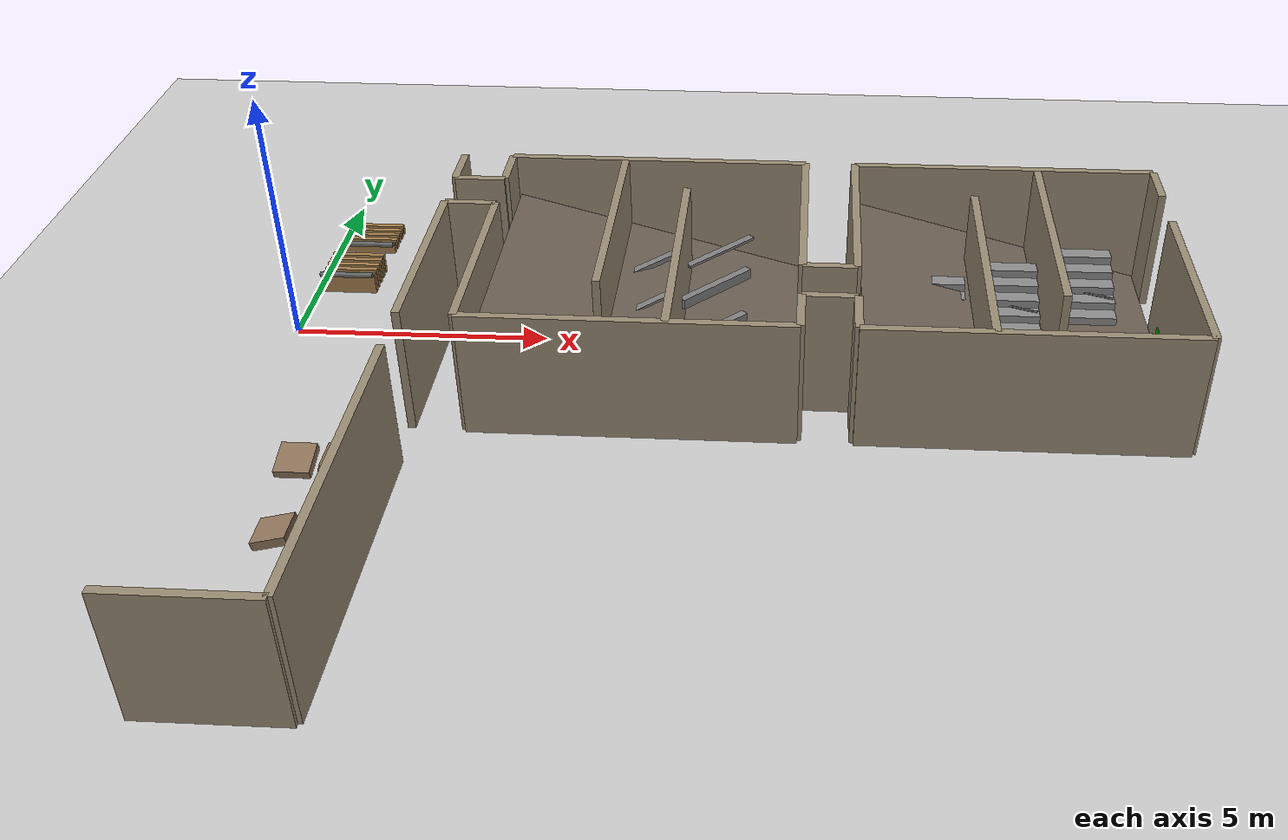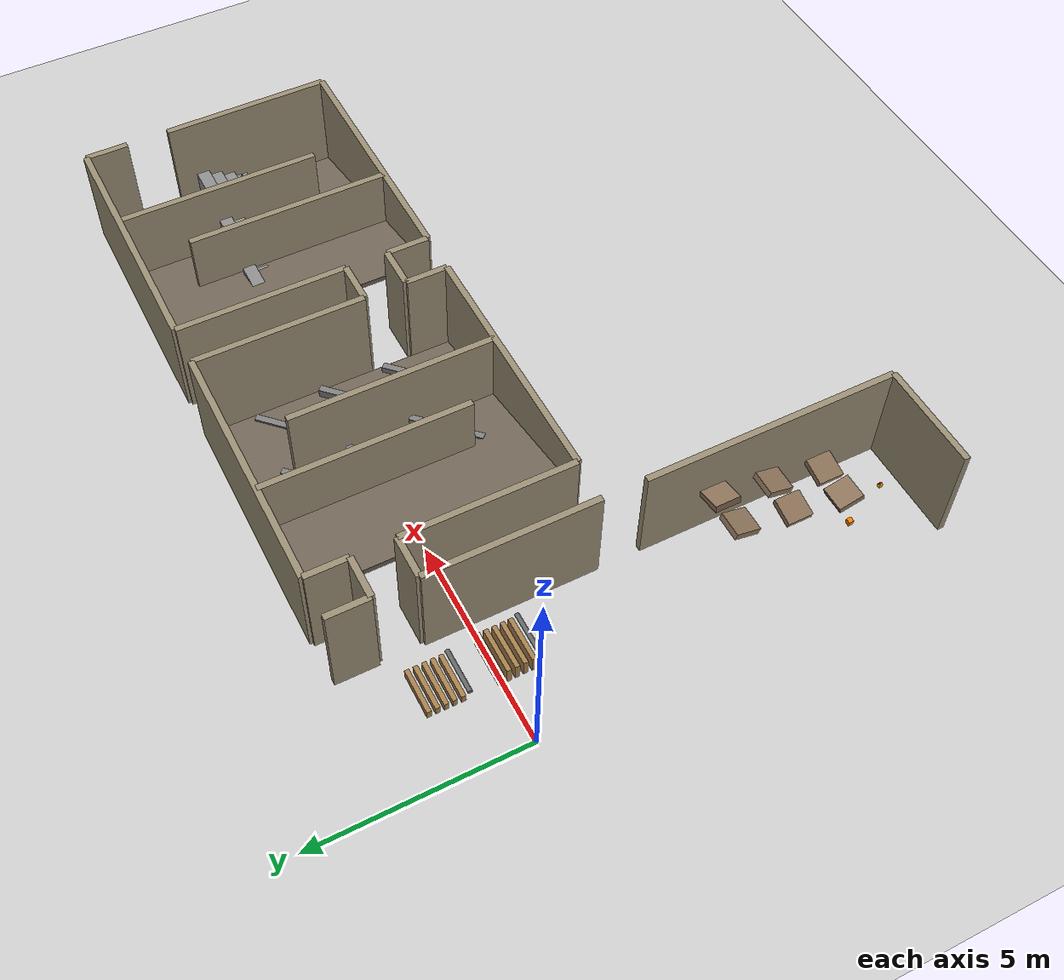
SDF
<sdf version="1.6">
 <world name="lrc_2025_atlanta">
  <model name="ground_plane">
   <static>true</static>
   <link name="link">
    <collision name="collision">
     <geometry><plane><normal>0 0 1</normal><size>50 50</size></plane></geometry>
    </collision>
    <visual name="visual">
     <geometry><plane><normal>0 0 1</normal><size>50 50</size></plane></geometry>
     <material><ambient>0.8 0.8 0.8 1</ambient><diffuse>0.8 0.8 0.8 1</diffuse></material>
    </visual>
   </link>
  </model>
  <model name="LA_S_b">
   <static>true</static>
   <pose>1.7500 -10.0000 1.2500 0.0000 0.0000 0.0000</pose>
   <link name="link">
    <collision name="col"><geometry><box><size>2.5000 0.1500 2.5000</size></box></geometry></collision>
    <visual name="vis">
     <geometry><box><size>2.5000 0.1500 2.5000</size></box></geometry>
     <material><ambient>0.6 0.55 0.45 1.0</ambient><diffuse>0.6 0.55 0.45 1.0</diffuse></material>
    </visual>
   </link>
  </model>
  <model name="LA_E">
   <static>true</static>
   <pose>3.0000 -7.0000 1.2500 0.0000 0.0000 0.0000</pose>
   <link name="link">
    <collision name="col"><geometry><box><size>0.1500 6.0000 2.5000</size></box></geometry></collision>
    <visual name="vis">
     <geometry><box><size>0.1500 6.0000 2.5000</size></box></geometry>
     <material><ambient>0.6 0.55 0.45 1.0</ambient><diffuse>0.6 0.55 0.45 1.0</diffuse></material>
    </visual>
   </link>
  </model>
  <model name="ramp_0_6">
   <static>true</static>
   <pose>1.8750 -8.3500 0.6036 -0.2618 0 0</pose>
   <link name="link">
    <collision name="col"><geometry><box><size>0.6000 0.6000 0.1600</size></box></geometry></collision>
    <visual name="vis">
     <geometry><box><size>0.6000 0.6000 0.1600</size></box></geometry>
     <material><ambient>0.55 0.45 0.35 1.0</ambient><diffuse>0.55 0.45 0.35 1.0</diffuse></material>
    </visual>
   </link>
  </model>
  <model name="ramp_0_7">
   <static>true</static>
   <pose>2.6250 -8.3500 0.6036 0 -0.2618 0</pose>
   <link name="link">
    <collision name="col"><geometry><box><size>0.6000 0.6000 0.1600</size></box></geometry></collision>
    <visual name="vis">
     <geometry><box><size>0.6000 0.6000 0.1600</size></box></geometry>
     <material><ambient>0.55 0.45 0.35 1.0</ambient><diffuse>0.55 0.45 0.35 1.0</diffuse></material>
    </visual>
   </link>
  </model>
  <model name="ramp_1_6">
   <static>true</static>
   <pose>1.8750 -7.0000 0.9530 0 -0.2618 0</pose>
   <link name="link">
    <collision name="col"><geometry><box><size>0.6000 0.6000 0.1600</size></box></geometry></collision>
    <visual name="vis">
     <geometry><box><size>0.6000 0.6000 0.1600</size></box></geometry>
     <material><ambient>0.55 0.45 0.35 1.0</ambient><diffuse>0.55 0.45 0.35 1.0</diffuse></material>
    </visual>
   </link>
  </model>
  <model name="ramp_1_7">
   <static>true</static>
   <pose>2.6250 -7.0000 0.9530 0.2618 0 0</pose>
   <link name="link">
    <collision name="col"><geometry><box><size>0.6000 0.6000 0.1600</size></box></geometry></collision>
    <visual name="vis">
     <geometry><box><size>0.6000 0.6000 0.1600</size></box></geometry>
     <material><ambient>0.55 0.45 0.35 1.0</ambient><diffuse>0.55 0.45 0.35 1.0</diffuse></material>
    </visual>
   </link>
  </model>
  <model name="ramp_2_6">
   <static>true</static>
   <pose>1.8750 -5.6500 1.3025 0.2618 0 0</pose>
   <link name="link">
    <collision name="col"><geometry><box><size>0.6000 0.6000 0.1600</size></box></geometry></collision>
    <visual name="vis">
     <geometry><box><size>0.6000 0.6000 0.1600</size></box></geometry>
     <material><ambient>0.55 0.45 0.35 1.0</ambient><diffuse>0.55 0.45 0.35 1.0</diffuse></material>
    </visual>
   </link>
  </model>
  <model name="ramp_2_7">
   <static>true</static>
   <pose>2.6250 -5.6500 1.3025 0 0.2618 0</pose>
   <link name="link">
    <collision name="col"><geometry><box><size>0.6000 0.6000 0.1600</size></box></geometry></collision>
    <visual name="vis">
     <geometry><box><size>0.6000 0.6000 0.1600</size></box></geometry>
     <material><ambient>0.55 0.45 0.35 1.0</ambient><diffuse>0.55 0.45 0.35 1.0</diffuse></material>
    </visual>
   </link>
  </model>
  <model name="haz_A">
   <static>true</static>
   <pose>1.5000 -8.3500 0.0600 0.0000 0.0000 0.0000</pose>
   <link name="link">
    <collision name="col"><geometry><box><size>0.1200 0.1200 0.1200</size></box></geometry></collision>
    <visual name="vis">
     <geometry><box><size>0.1200 0.1200 0.1200</size></box></geometry>
     <material><ambient>1.0 0.5 0.0 1.0</ambient><diffuse>1.0 0.5 0.0 1.0</diffuse></material>
    </visual>
   </link>
  </model>
  <model name="es_A">
   <static>true</static>
   <pose>2.0000 -9.5000 0.0400 0.0000 0.0000 0.0000</pose>
   <link name="link">
    <collision name="col"><geometry><box><size>0.0800 0.0800 0.0800</size></box></geometry></collision>
    <visual name="vis">
     <geometry><box><size>0.0800 0.0800 0.0800</size></box></geometry>
     <material><ambient>0.9 0.9 0.0 1.0</ambient><diffuse>0.9 0.9 0.0 1.0</diffuse></material>
    </visual>
   </link>
  </model>
  <model name="esb_A">
   <static>true</static>
   <pose>2.0000 -9.5000 0.1000 0.0000 0.0000 0.0000</pose>
   <link name="link">
    <collision name="col">
     <geometry><cylinder><radius>0.03</radius><length>0.04</length></cylinder></geometry>
    </collision>
    <visual name="vis">
     <geometry><cylinder><radius>0.03</radius><length>0.04</length></cylinder></geometry>
     <material><ambient>1.0 0.0 0.0 1.0</ambient><diffuse>1.0 0.0 0.0 1.0</diffuse></material>
    </visual>
   </link>
  </model>
  <model name="LC_E_a">
   <static>true</static>
   <pose>3.0000 -1.0000 1.2500 0.0000 0.0000 0.0000</pose>
   <link name="link">
    <collision name="col"><geometry><box><size>0.1500 4.0000 2.5000</size></box></geometry></collision>
    <visual name="vis">
     <geometry><box><size>0.1500 4.0000 2.5000</size></box></geometry>
     <material><ambient>0.6 0.55 0.45 1.0</ambient><diffuse>0.6 0.55 0.45 1.0</diffuse></material>
    </visual>
   </link>
  </model>
  <model name="LC_E_b">
   <static>true</static>
   <pose>3.0000 2.5000 1.2500 0.0000 0.0000 0.0000</pose>
   <link name="link">
    <collision name="col"><geometry><box><size>0.1500 1.0000 2.5000</size></box></geometry></collision>
    <visual name="vis">
     <geometry><box><size>0.1500 1.0000 2.5000</size></box></geometry>
     <material><ambient>0.6 0.55 0.45 1.0</ambient><diffuse>0.6 0.55 0.45 1.0</diffuse></material>
    </visual>
   </link>
  </model>
  <model name="plt_2_1_0">
   <static>true</static>
   <pose>1.3500 -0.3600 1.4225 0.0000 0.0000 0.0000</pose>
   <link name="link">
    <collision name="col"><geometry><box><size>1.0000 0.1000 0.4000</size></box></geometry></collision>
    <visual name="vis">
     <geometry><box><size>1.0000 0.1000 0.4000</size></box></geometry>
     <material><ambient>0.65 0.5 0.3 1.0</ambient><diffuse>0.65 0.5 0.3 1.0</diffuse></material>
    </visual>
   </link>
  </model>
  <model name="plt_2_1_1">
   <static>true</static>
   <pose>1.3500 -0.1800 1.4225 0.0000 0.0000 0.0000</pose>
   <link name="link">
    <collision name="col"><geometry><box><size>1.0000 0.1000 0.4000</size></box></geometry></collision>
    <visual name="vis">
     <geometry><box><size>1.0000 0.1000 0.4000</size></box></geometry>
     <material><ambient>0.65 0.5 0.3 1.0</ambient><diffuse>0.65 0.5 0.3 1.0</diffuse></material>
    </visual>
   </link>
  </model>
  <model name="plt_2_1_2">
   <static>true</static>
   <pose>1.3500 0.0000 1.4225 0.0000 0.0000 0.0000</pose>
   <link name="link">
    <collision name="col"><geometry><box><size>1.0000 0.1000 0.4000</size></box></geometry></collision>
    <visual name="vis">
     <geometry><box><size>1.0000 0.1000 0.4000</size></box></geometry>
     <material><ambient>0.65 0.5 0.3 1.0</ambient><diffuse>0.65 0.5 0.3 1.0</diffuse></material>
    </visual>
   </link>
  </model>
  <model name="plt_2_1_3">
   <static>true</static>
   <pose>1.3500 0.1800 1.4225 0.0000 0.0000 0.0000</pose>
   <link name="link">
    <collision name="col"><geometry><box><size>1.0000 0.1000 0.4000</size></box></geometry></collision>
    <visual name="vis">
     <geometry><box><size>1.0000 0.1000 0.4000</size></box></geometry>
     <material><ambient>0.65 0.5 0.3 1.0</ambient><diffuse>0.65 0.5 0.3 1.0</diffuse></material>
    </visual>
   </link>
  </model>
  <model name="plt_2_1_4">
   <static>true</static>
   <pose>1.3500 0.3600 1.4225 0.0000 0.0000 0.0000</pose>
   <link name="link">
    <collision name="col"><geometry><box><size>1.0000 0.1000 0.4000</size></box></geometry></collision>
    <visual name="vis">
     <geometry><box><size>1.0000 0.1000 0.4000</size></box></geometry>
     <material><ambient>0.65 0.5 0.3 1.0</ambient><diffuse>0.65 0.5 0.3 1.0</diffuse></material>
    </visual>
   </link>
  </model>
  <model name="pipe_2_1">
   <static>true</static>
   <pose>1.3500 -0.5000 1.6725 0 1.5708 0</pose>
   <link name="link">
    <collision name="col">
     <geometry><cylinder><radius>0.05</radius><length>1.0</length></cylinder></geometry>
    </collision>
    <visual name="vis">
     <geometry><cylinder><radius>0.05</radius><length>1.0</length></cylinder></geometry>
     <material><ambient>0.4 0.4 0.4 1.0</ambient><diffuse>0.4 0.4 0.4 1.0</diffuse></material>
    </visual>
   </link>
  </model>
  <model name="plt_2_2_0">
   <static>true</static>
   <pose>1.3500 1.1400 1.3225 0.0000 0.0000 0.0000</pose>
   <link name="link">
    <collision name="col"><geometry><box><size>1.0000 0.1000 0.2000</size></box></geometry></collision>
    <visual name="vis">
     <geometry><box><size>1.0000 0.1000 0.2000</size></box></geometry>
     <material><ambient>0.65 0.5 0.3 1.0</ambient><diffuse>0.65 0.5 0.3 1.0</diffuse></material>
    </visual>
   </link>
  </model>
  <model name="plt_2_2_1">
   <static>true</static>
   <pose>1.3500 1.3200 1.3225 0.0000 0.0000 0.0000</pose>
   <link name="link">
    <collision name="col"><geometry><box><size>1.0000 0.1000 0.2000</size></box></geometry></collision>
    <visual name="vis">
     <geometry><box><size>1.0000 0.1000 0.2000</size></box></geometry>
     <material><ambient>0.65 0.5 0.3 1.0</ambient><diffuse>0.65 0.5 0.3 1.0</diffuse></material>
    </visual>
   </link>
  </model>
  <model name="plt_2_2_2">
   <static>true</static>
   <pose>1.3500 1.5000 1.3225 0.0000 0.0000 0.0000</pose>
   <link name="link">
    <collision name="col"><geometry><box><size>1.0000 0.1000 0.2000</size></box></geometry></collision>
    <visual name="vis">
     <geometry><box><size>1.0000 0.1000 0.2000</size></box></geometry>
     <material><ambient>0.65 0.5 0.3 1.0</ambient><diffuse>0.65 0.5 0.3 1.0</diffuse></material>
    </visual>
   </link>
  </model>
  <model name="plt_2_2_3">
   <static>true</static>
   <pose>1.3500 1.6800 1.3225 0.0000 0.0000 0.0000</pose>
   <link name="link">
    <collision name="col"><geometry><box><size>1.0000 0.1000 0.2000</size></box></geometry></collision>
    <visual name="vis">
     <geometry><box><size>1.0000 0.1000 0.2000</size></box></geometry>
     <material><ambient>0.65 0.5 0.3 1.0</ambient><diffuse>0.65 0.5 0.3 1.0</diffuse></material>
    </visual>
   </link>
  </model>
  <model name="plt_2_2_4">
   <static>true</static>
   <pose>1.3500 1.8600 1.3225 0.0000 0.0000 0.0000</pose>
   <link name="link">
    <collision name="col"><geometry><box><size>1.0000 0.1000 0.2000</size></box></geometry></collision>
    <visual name="vis">
     <geometry><box><size>1.0000 0.1000 0.2000</size></box></geometry>
     <material><ambient>0.65 0.5 0.3 1.0</ambient><diffuse>0.65 0.5 0.3 1.0</diffuse></material>
    </visual>
   </link>
  </model>
  <model name="pipe_2_2">
   <static>true</static>
   <pose>1.3500 1.0000 1.4725 0 1.5708 0</pose>
   <link name="link">
    <collision name="col">
     <geometry><cylinder><radius>0.05</radius><length>1.0</length></cylinder></geometry>
    </collision>
    <visual name="vis">
     <geometry><cylinder><radius>0.05</radius><length>1.0</length></cylinder></geometry>
     <material><ambient>0.4 0.4 0.4 1.0</ambient><diffuse>0.4 0.4 0.4 1.0</diffuse></material>
    </visual>
   </link>
  </model>
  <model name="LD_S">
   <static>true</static>
   <pose>7.0000 -3.0000 1.2500 0.0000 0.0000 0.0000</pose>
   <link name="link">
    <collision name="col"><geometry><box><size>6.0000 0.1500 2.5000</size></box></geometry></collision>
    <visual name="vis">
     <geometry><box><size>6.0000 0.1500 2.5000</size></box></geometry>
     <material><ambient>0.6 0.55 0.45 1.0</ambient><diffuse>0.6 0.55 0.45 1.0</diffuse></material>
    </visual>
   </link>
  </model>
  <model name="LD_N">
   <static>true</static>
   <pose>7.0000 3.0000 1.2500 0.0000 0.0000 0.0000</pose>
   <link name="link">
    <collision name="col"><geometry><box><size>6.0000 0.1500 2.5000</size></box></geometry></collision>
    <visual name="vis">
     <geometry><box><size>6.0000 0.1500 2.5000</size></box></geometry>
     <material><ambient>0.6 0.55 0.45 1.0</ambient><diffuse>0.6 0.55 0.45 1.0</diffuse></material>
    </visual>
   </link>
  </model>
  <model name="LD_W_a">
   <static>true</static>
   <pose>4.0000 -1.0000 1.2500 0.0000 0.0000 0.0000</pose>
   <link name="link">
    <collision name="col"><geometry><box><size>0.1500 4.0000 2.5000</size></box></geometry></collision>
    <visual name="vis">
     <geometry><box><size>0.1500 4.0000 2.5000</size></box></geometry>
     <material><ambient>0.6 0.55 0.45 1.0</ambient><diffuse>0.6 0.55 0.45 1.0</diffuse></material>
    </visual>
   </link>
  </model>
  <model name="LD_W_b">
   <static>true</static>
   <pose>4.0000 2.5000 1.2500 0.0000 0.0000 0.0000</pose>
   <link name="link">
    <collision name="col"><geometry><box><size>0.1500 1.0000 2.5000</size></box></geometry></collision>
    <visual name="vis">
     <geometry><box><size>0.1500 1.0000 2.5000</size></box></geometry>
     <material><ambient>0.6 0.55 0.45 1.0</ambient><diffuse>0.6 0.55 0.45 1.0</diffuse></material>
    </visual>
   </link>
  </model>
  <model name="LD_E_a">
   <static>true</static>
   <pose>10.0000 -2.5000 1.2500 0.0000 0.0000 0.0000</pose>
   <link name="link">
    <collision name="col"><geometry><box><size>0.1500 1.0000 2.5000</size></box></geometry></collision>
    <visual name="vis">
     <geometry><box><size>0.1500 1.0000 2.5000</size></box></geometry>
     <material><ambient>0.6 0.55 0.45 1.0</ambient><diffuse>0.6 0.55 0.45 1.0</diffuse></material>
    </visual>
   </link>
  </model>
  <model name="LD_E_b">
   <static>true</static>
   <pose>10.0000 1.0000 1.2500 0.0000 0.0000 0.0000</pose>
   <link name="link">
    <collision name="col"><geometry><box><size>0.1500 4.0000 2.5000</size></box></geometry></collision>
    <visual name="vis">
     <geometry><box><size>0.1500 4.0000 2.5000</size></box></geometry>
     <material><ambient>0.6 0.55 0.45 1.0</ambient><diffuse>0.6 0.55 0.45 1.0</diffuse></material>
    </visual>
   </link>
  </model>
  <model name="LD_d0">
   <static>true</static>
   <pose>6.3250 0.6000 1.2500 0.0000 0.0000 0.0000</pose>
   <link name="link">
    <collision name="col"><geometry><box><size>0.1500 4.8000 2.5000</size></box></geometry></collision>
    <visual name="vis">
     <geometry><box><size>0.1500 4.8000 2.5000</size></box></geometry>
     <material><ambient>0.6 0.55 0.45 1.0</ambient><diffuse>0.6 0.55 0.45 1.0</diffuse></material>
    </visual>
   </link>
  </model>
  <model name="LD_d1">
   <static>true</static>
   <pose>7.6750 -0.6000 1.2500 0.0000 0.0000 0.0000</pose>
   <link name="link">
    <collision name="col"><geometry><box><size>0.1500 4.8000 2.5000</size></box></geometry></collision>
    <visual name="vis">
     <geometry><box><size>0.1500 4.8000 2.5000</size></box></geometry>
     <material><ambient>0.6 0.55 0.45 1.0</ambient><diffuse>0.6 0.55 0.45 1.0</diffuse></material>
    </visual>
   </link>
  </model>
  <model name="LD_floor">
   <static>true</static>
   <pose>7 0 0.8248 0 0.2618 0</pose>
   <link name="link">
    <collision name="col"><geometry><box><size>6.0000 6.0000 0.1000</size></box></geometry></collision>
    <visual name="vis">
     <geometry><box><size>6.0000 6.0000 0.1000</size></box></geometry>
     <material><ambient>0.45 0.4 0.35 1.0</ambient><diffuse>0.45 0.4 0.35 1.0</diffuse></material>
    </visual>
   </link>
  </model>
  <model name="kr_0_0">
   <static>true</static>
   <pose>5.6500 -1.5000 0.5486 0 0 0.7854</pose>
   <link name="link">
    <collision name="col"><geometry><box><size>1.7000 0.1500 0.0500</size></box></geometry></collision>
    <visual name="vis">
     <geometry><box><size>1.7000 0.1500 0.0500</size></box></geometry>
     <material><ambient>0.5 0.5 0.5 1.0</ambient><diffuse>0.5 0.5 0.5 1.0</diffuse></material>
    </visual>
   </link>
  </model>
  <model name="kr_0_1">
   <static>true</static>
   <pose>5.6500 0.0000 0.5736 0 0 0.7854</pose>
   <link name="link">
    <collision name="col"><geometry><box><size>1.7000 0.1500 0.1000</size></box></geometry></collision>
    <visual name="vis">
     <geometry><box><size>1.7000 0.1500 0.1000</size></box></geometry>
     <material><ambient>0.5 0.5 0.5 1.0</ambient><diffuse>0.5 0.5 0.5 1.0</diffuse></material>
    </visual>
   </link>
  </model>
  <model name="kr_0_2">
   <static>true</static>
   <pose>5.6500 1.5000 0.5986 0 0 0.7854</pose>
   <link name="link">
    <collision name="col"><geometry><box><size>1.7000 0.1500 0.1500</size></box></geometry></collision>
    <visual name="vis">
     <geometry><box><size>1.7000 0.1500 0.1500</size></box></geometry>
     <material><ambient>0.5 0.5 0.5 1.0</ambient><diffuse>0.5 0.5 0.5 1.0</diffuse></material>
    </visual>
   </link>
  </model>
  <model name="kr_1_0">
   <static>true</static>
   <pose>7.0000 -1.5000 0.9730 0 0 0.7854</pose>
   <link name="link">
    <collision name="col"><geometry><box><size>1.7000 0.1500 0.2000</size></box></geometry></collision>
    <visual name="vis">
     <geometry><box><size>1.7000 0.1500 0.2000</size></box></geometry>
     <material><ambient>0.5 0.5 0.5 1.0</ambient><diffuse>0.5 0.5 0.5 1.0</diffuse></material>
    </visual>
   </link>
  </model>
  <model name="kr_1_1">
   <static>true</static>
   <pose>7.0000 0.0000 0.8980 0 0 0.7854</pose>
   <link name="link">
    <collision name="col"><geometry><box><size>1.7000 0.1500 0.0500</size></box></geometry></collision>
    <visual name="vis">
     <geometry><box><size>1.7000 0.1500 0.0500</size></box></geometry>
     <material><ambient>0.5 0.5 0.5 1.0</ambient><diffuse>0.5 0.5 0.5 1.0</diffuse></material>
    </visual>
   </link>
  </model>
  <model name="kr_1_2">
   <static>true</static>
   <pose>7.0000 1.5000 0.9230 0 0 0.7854</pose>
   <link name="link">
    <collision name="col"><geometry><box><size>1.7000 0.1500 0.1000</size></box></geometry></collision>
    <visual name="vis">
     <geometry><box><size>1.7000 0.1500 0.1000</size></box></geometry>
     <material><ambient>0.5 0.5 0.5 1.0</ambient><diffuse>0.5 0.5 0.5 1.0</diffuse></material>
    </visual>
   </link>
  </model>
  <model name="kr_2_0">
   <static>true</static>
   <pose>8.3500 -1.5000 1.2975 0 0 0.7854</pose>
   <link name="link">
    <collision name="col"><geometry><box><size>1.7000 0.1500 0.1500</size></box></geometry></collision>
    <visual name="vis">
     <geometry><box><size>1.7000 0.1500 0.1500</size></box></geometry>
     <material><ambient>0.5 0.5 0.5 1.0</ambient><diffuse>0.5 0.5 0.5 1.0</diffuse></material>
    </visual>
   </link>
  </model>
  <model name="kr_2_1">
   <static>true</static>
   <pose>8.3500 0.0000 1.3225 0 0 0.7854</pose>
   <link name="link">
    <collision name="col"><geometry><box><size>1.7000 0.1500 0.2000</size></box></geometry></collision>
    <visual name="vis">
     <geometry><box><size>1.7000 0.1500 0.2000</size></box></geometry>
     <material><ambient>0.5 0.5 0.5 1.0</ambient><diffuse>0.5 0.5 0.5 1.0</diffuse></material>
    </visual>
   </link>
  </model>
  <model name="kr_2_2">
   <static>true</static>
   <pose>8.3500 1.5000 1.2475 0 0 0.7854</pose>
   <link name="link">
    <collision name="col"><geometry><box><size>1.7000 0.1500 0.0500</size></box></geometry></collision>
    <visual name="vis">
     <geometry><box><size>1.7000 0.1500 0.0500</size></box></geometry>
     <material><ambient>0.5 0.5 0.5 1.0</ambient><diffuse>0.5 0.5 0.5 1.0</diffuse></material>
    </visual>
   </link>
  </model>
  <model name="qr_D">
   <static>true</static>
   <pose>7 -2.8500 0.6000 0.0000 0.0000 0.0000</pose>
   <link name="link">
    <collision name="col"><geometry><box><size>0.1500 0.0200 0.1500</size></box></geometry></collision>
    <visual name="vis">
     <geometry><box><size>0.1500 0.0200 0.1500</size></box></geometry>
     <material><ambient>0.0 0.8 0.0 1.0</ambient><diffuse>0.0 0.8 0.0 1.0</diffuse></material>
    </visual>
   </link>
  </model>
  <model name="haz_D">
   <static>true</static>
   <pose>8.3500 -1.0000 0.0600 0.0000 0.0000 0.0000</pose>
   <link name="link">
    <collision name="col"><geometry><box><size>0.1200 0.1200 0.1200</size></box></geometry></collision>
    <visual name="vis">
     <geometry><box><size>0.1200 0.1200 0.1200</size></box></geometry>
     <material><ambient>1.0 0.5 0.0 1.0</ambient><diffuse>1.0 0.5 0.0 1.0</diffuse></material>
    </visual>
   </link>
  </model>
  <model name="es_D">
   <static>true</static>
   <pose>7.0000 1.0000 0.0400 0.0000 0.0000 0.0000</pose>
   <link name="link">
    <collision name="col"><geometry><box><size>0.0800 0.0800 0.0800</size></box></geometry></collision>
    <visual name="vis">
     <geometry><box><size>0.0800 0.0800 0.0800</size></box></geometry>
     <material><ambient>0.9 0.9 0.0 1.0</ambient><diffuse>0.9 0.9 0.0 1.0</diffuse></material>
    </visual>
   </link>
  </model>
  <model name="esb_D">
   <static>true</static>
   <pose>7.0000 1.0000 0.1000 0.0000 0.0000 0.0000</pose>
   <link name="link">
    <collision name="col">
     <geometry><cylinder><radius>0.03</radius><length>0.04</length></cylinder></geometry>
    </collision>
    <visual name="vis">
     <geometry><cylinder><radius>0.03</radius><length>0.04</length></cylinder></geometry>
     <material><ambient>1.0 0.0 0.0 1.0</ambient><diffuse>1.0 0.0 0.0 1.0</diffuse></material>
    </visual>
   </link>
  </model>
  <model name="LF_S">
   <static>true</static>
   <pose>14.0000 -3.0000 1.2500 0.0000 0.0000 0.0000</pose>
   <link name="link">
    <collision name="col"><geometry><box><size>6.0000 0.1500 2.5000</size></box></geometry></collision>
    <visual name="vis">
     <geometry><box><size>6.0000 0.1500 2.5000</size></box></geometry>
     <material><ambient>0.6 0.55 0.45 1.0</ambient><diffuse>0.6 0.55 0.45 1.0</diffuse></material>
    </visual>
   </link>
  </model>
  <model name="LF_N">
   <static>true</static>
   <pose>14.0000 3.0000 1.2500 0.0000 0.0000 0.0000</pose>
   <link name="link">
    <collision name="col"><geometry><box><size>6.0000 0.1500 2.5000</size></box></geometry></collision>
    <visual name="vis">
     <geometry><box><size>6.0000 0.1500 2.5000</size></box></geometry>
     <material><ambient>0.6 0.55 0.45 1.0</ambient><diffuse>0.6 0.55 0.45 1.0</diffuse></material>
    </visual>
   </link>
  </model>
  <model name="LF_W_a">
   <static>true</static>
   <pose>11.0000 -2.5000 1.2500 0.0000 0.0000 0.0000</pose>
   <link name="link">
    <collision name="col"><geometry><box><size>0.1500 1.0000 2.5000</size></box></geometry></collision>
    <visual name="vis">
     <geometry><box><size>0.1500 1.0000 2.5000</size></box></geometry>
     <material><ambient>0.6 0.55 0.45 1.0</ambient><diffuse>0.6 0.55 0.45 1.0</diffuse></material>
    </visual>
   </link>
  </model>
  <model name="LF_W_b">
   <static>true</static>
   <pose>11.0000 1.0000 1.2500 0.0000 0.0000 0.0000</pose>
   <link name="link">
    <collision name="col"><geometry><box><size>0.1500 4.0000 2.5000</size></box></geometry></collision>
    <visual name="vis">
     <geometry><box><size>0.1500 4.0000 2.5000</size></box></geometry>
     <material><ambient>0.6 0.55 0.45 1.0</ambient><diffuse>0.6 0.55 0.45 1.0</diffuse></material>
    </visual>
   </link>
  </model>
  <model name="LF_E_a">
   <static>true</static>
   <pose>17.0000 -1.0000 1.2500 0.0000 0.0000 0.0000</pose>
   <link name="link">
    <collision name="col"><geometry><box><size>0.1500 4.0000 2.5000</size></box></geometry></collision>
    <visual name="vis">
     <geometry><box><size>0.1500 4.0000 2.5000</size></box></geometry>
     <material><ambient>0.6 0.55 0.45 1.0</ambient><diffuse>0.6 0.55 0.45 1.0</diffuse></material>
    </visual>
   </link>
  </model>
  <model name="LF_E_b">
   <static>true</static>
   <pose>17.0000 2.5000 1.2500 0.0000 0.0000 0.0000</pose>
   <link name="link">
    <collision name="col"><geometry><box><size>0.1500 1.0000 2.5000</size></box></geometry></collision>
    <visual name="vis">
     <geometry><box><size>0.1500 1.0000 2.5000</size></box></geometry>
     <material><ambient>0.6 0.55 0.45 1.0</ambient><diffuse>0.6 0.55 0.45 1.0</diffuse></material>
    </visual>
   </link>
  </model>
  <model name="LF_d0">
   <static>true</static>
   <pose>13.3250 -0.6000 1.2500 0.0000 0.0000 0.0000</pose>
   <link name="link">
    <collision name="col"><geometry><box><size>0.1500 4.8000 2.5000</size></box></geometry></collision>
    <visual name="vis">
     <geometry><box><size>0.1500 4.8000 2.5000</size></box></geometry>
     <material><ambient>0.6 0.55 0.45 1.0</ambient><diffuse>0.6 0.55 0.45 1.0</diffuse></material>
    </visual>
   </link>
  </model>
  <model name="LF_d1">
   <static>true</static>
   <pose>14.6750 0.6000 1.2500 0.0000 0.0000 0.0000</pose>
   <link name="link">
    <collision name="col"><geometry><box><size>0.1500 4.8000 2.5000</size></box></geometry></collision>
    <visual name="vis">
     <geometry><box><size>0.1500 4.8000 2.5000</size></box></geometry>
     <material><ambient>0.6 0.55 0.45 1.0</ambient><diffuse>0.6 0.55 0.45 1.0</diffuse></material>
    </visual>
   </link>
  </model>
  <model name="LF_floor">
   <static>true</static>
   <pose>14 0 0.8248 0 0.2618 0</pose>
   <link name="link">
    <collision name="col"><geometry><box><size>6.0000 6.0000 0.1000</size></box></geometry></collision>
    <visual name="vis">
     <geometry><box><size>6.0000 6.0000 0.1000</size></box></geometry>
     <material><ambient>0.45 0.4 0.35 1.0</ambient><diffuse>0.45 0.4 0.35 1.0</diffuse></material>
    </visual>
   </link>
  </model>
  <model name="step_0_0">
   <static>true</static>
   <pose>12.6500 -0.6000 0.5986 0.0000 0.0000 0.0000</pose>
   <link name="link">
    <collision name="col"><geometry><box><size>1.0000 0.3000 0.1500</size></box></geometry></collision>
    <visual name="vis">
     <geometry><box><size>1.0000 0.3000 0.1500</size></box></geometry>
     <material><ambient>0.55 0.55 0.55 1.0</ambient><diffuse>0.55 0.55 0.55 1.0</diffuse></material>
    </visual>
   </link>
  </model>
  <model name="step_0_1">
   <static>true</static>
   <pose>12.6500 -0.3000 0.6736 0.0000 0.0000 0.0000</pose>
   <link name="link">
    <collision name="col"><geometry><box><size>1.0000 0.3000 0.3000</size></box></geometry></collision>
    <visual name="vis">
     <geometry><box><size>1.0000 0.3000 0.3000</size></box></geometry>
     <material><ambient>0.55 0.55 0.55 1.0</ambient><diffuse>0.55 0.55 0.55 1.0</diffuse></material>
    </visual>
   </link>
  </model>
  <model name="step_0_2">
   <static>true</static>
   <pose>12.6500 -0.0000 0.7486 0.0000 0.0000 0.0000</pose>
   <link name="link">
    <collision name="col"><geometry><box><size>1.0000 0.3000 0.4500</size></box></geometry></collision>
    <visual name="vis">
     <geometry><box><size>1.0000 0.3000 0.4500</size></box></geometry>
     <material><ambient>0.55 0.55 0.55 1.0</ambient><diffuse>0.55 0.55 0.55 1.0</diffuse></material>
    </visual>
   </link>
  </model>
  <model name="step_0_3">
   <static>true</static>
   <pose>12.6500 0.3000 0.8236 0.0000 0.0000 0.0000</pose>
   <link name="link">
    <collision name="col"><geometry><box><size>1.0000 0.3000 0.6000</size></box></geometry></collision>
    <visual name="vis">
     <geometry><box><size>1.0000 0.3000 0.6000</size></box></geometry>
     <material><ambient>0.55 0.55 0.55 1.0</ambient><diffuse>0.55 0.55 0.55 1.0</diffuse></material>
    </visual>
   </link>
  </model>
  <model name="step_0_4">
   <static>true</static>
   <pose>12.6500 0.6000 0.8986 0.0000 0.0000 0.0000</pose>
   <link name="link">
    <collision name="col"><geometry><box><size>1.0000 0.3000 0.7500</size></box></geometry></collision>
    <visual name="vis">
     <geometry><box><size>1.0000 0.3000 0.7500</size></box></geometry>
     <material><ambient>0.55 0.55 0.55 1.0</ambient><diffuse>0.55 0.55 0.55 1.0</diffuse></material>
    </visual>
   </link>
  </model>
  <model name="debris_0">
   <static>true</static>
   <pose>12.6500 -0.1500 0.8436 0.3500 1.5708 0</pose>
   <link name="link">
    <collision name="col">
     <geometry><cylinder><radius>0.02</radius><length>1.0</length></cylinder></geometry>
    </collision>
    <visual name="vis">
     <geometry><cylinder><radius>0.02</radius><length>1.0</length></cylinder></geometry>
     <material><ambient>0.4 0.4 0.4 1.0</ambient><diffuse>0.4 0.4 0.4 1.0</diffuse></material>
    </visual>
   </link>
  </model>
  <model name="step_1_0">
   <static>true</static>
   <pose>14.0000 -0.6000 0.9480 0.0000 0.0000 0.0000</pose>
   <link name="link">
    <collision name="col"><geometry><box><size>1.0000 0.3000 0.1500</size></box></geometry></collision>
    <visual name="vis">
     <geometry><box><size>1.0000 0.3000 0.1500</size></box></geometry>
     <material><ambient>0.55 0.55 0.55 1.0</ambient><diffuse>0.55 0.55 0.55 1.0</diffuse></material>
    </visual>
   </link>
  </model>
  <model name="step_1_1">
   <static>true</static>
   <pose>14.0000 -0.3000 1.0230 0.0000 0.0000 0.0000</pose>
   <link name="link">
    <collision name="col"><geometry><box><size>1.0000 0.3000 0.3000</size></box></geometry></collision>
    <visual name="vis">
     <geometry><box><size>1.0000 0.3000 0.3000</size></box></geometry>
     <material><ambient>0.55 0.55 0.55 1.0</ambient><diffuse>0.55 0.55 0.55 1.0</diffuse></material>
    </visual>
   </link>
  </model>
  <model name="step_1_2">
   <static>true</static>
   <pose>14.0000 -0.0000 1.0980 0.0000 0.0000 0.0000</pose>
   <link name="link">
    <collision name="col"><geometry><box><size>1.0000 0.3000 0.4500</size></box></geometry></collision>
    <visual name="vis">
     <geometry><box><size>1.0000 0.3000 0.4500</size></box></geometry>
     <material><ambient>0.55 0.55 0.55 1.0</ambient><diffuse>0.55 0.55 0.55 1.0</diffuse></material>
    </visual>
   </link>
  </model>
  <model name="step_1_3">
   <static>true</static>
   <pose>14.0000 0.3000 1.1730 0.0000 0.0000 0.0000</pose>
   <link name="link">
    <collision name="col"><geometry><box><size>1.0000 0.3000 0.6000</size></box></geometry></collision>
    <visual name="vis">
     <geometry><box><size>1.0000 0.3000 0.6000</size></box></geometry>
     <material><ambient>0.55 0.55 0.55 1.0</ambient><diffuse>0.55 0.55 0.55 1.0</diffuse></material>
    </visual>
   </link>
  </model>
  <model name="step_1_4">
   <static>true</static>
   <pose>14.0000 0.6000 1.2480 0.0000 0.0000 0.0000</pose>
   <link name="link">
    <collision name="col"><geometry><box><size>1.0000 0.3000 0.7500</size></box></geometry></collision>
    <visual name="vis">
     <geometry><box><size>1.0000 0.3000 0.7500</size></box></geometry>
     <material><ambient>0.55 0.55 0.55 1.0</ambient><diffuse>0.55 0.55 0.55 1.0</diffuse></material>
    </visual>
   </link>
  </model>
  <model name="debris_1">
   <static>true</static>
   <pose>14.0000 -0.1500 1.1930 0.3500 1.5708 0</pose>
   <link name="link">
    <collision name="col">
     <geometry><cylinder><radius>0.02</radius><length>1.0</length></cylinder></geometry>
    </collision>
    <visual name="vis">
     <geometry><cylinder><radius>0.02</radius><length>1.0</length></cylinder></geometry>
     <material><ambient>0.4 0.4 0.4 1.0</ambient><diffuse>0.4 0.4 0.4 1.0</diffuse></material>
    </visual>
   </link>
  </model>
  <model name="step_2_0">
   <static>true</static>
   <pose>15.3500 -0.6000 1.2975 0.0000 0.0000 0.0000</pose>
   <link name="link">
    <collision name="col"><geometry><box><size>1.0000 0.3000 0.1500</size></box></geometry></collision>
    <visual name="vis">
     <geometry><box><size>1.0000 0.3000 0.1500</size></box></geometry>
     <material><ambient>0.55 0.55 0.55 1.0</ambient><diffuse>0.55 0.55 0.55 1.0</diffuse></material>
    </visual>
   </link>
  </model>
  <model name="step_2_1">
   <static>true</static>
   <pose>15.3500 -0.3000 1.3725 0.0000 0.0000 0.0000</pose>
   <link name="link">
    <collision name="col"><geometry><box><size>1.0000 0.3000 0.3000</size></box></geometry></collision>
    <visual name="vis">
     <geometry><box><size>1.0000 0.3000 0.3000</size></box></geometry>
     <material><ambient>0.55 0.55 0.55 1.0</ambient><diffuse>0.55 0.55 0.55 1.0</diffuse></material>
    </visual>
   </link>
  </model>
  <model name="step_2_2">
   <static>true</static>
   <pose>15.3500 -0.0000 1.4475 0.0000 0.0000 0.0000</pose>
   <link name="link">
    <collision name="col"><geometry><box><size>1.0000 0.3000 0.4500</size></box></geometry></collision>
    <visual name="vis">
     <geometry><box><size>1.0000 0.3000 0.4500</size></box></geometry>
     <material><ambient>0.55 0.55 0.55 1.0</ambient><diffuse>0.55 0.55 0.55 1.0</diffuse></material>
    </visual>
   </link>
  </model>
  <model name="step_2_3">
   <static>true</static>
   <pose>15.3500 0.3000 1.5225 0.0000 0.0000 0.0000</pose>
   <link name="link">
    <collision name="col"><geometry><box><size>1.0000 0.3000 0.6000</size></box></geometry></collision>
    <visual name="vis">
     <geometry><box><size>1.0000 0.3000 0.6000</size></box></geometry>
     <material><ambient>0.55 0.55 0.55 1.0</ambient><diffuse>0.55 0.55 0.55 1.0</diffuse></material>
    </visual>
   </link>
  </model>
  <model name="step_2_4">
   <static>true</static>
   <pose>15.3500 0.6000 1.5975 0.0000 0.0000 0.0000</pose>
   <link name="link">
    <collision name="col"><geometry><box><size>1.0000 0.3000 0.7500</size></box></geometry></collision>
    <visual name="vis">
     <geometry><box><size>1.0000 0.3000 0.7500</size></box></geometry>
     <material><ambient>0.55 0.55 0.55 1.0</ambient><diffuse>0.55 0.55 0.55 1.0</diffuse></material>
    </visual>
   </link>
  </model>
  <model name="debris_2">
   <static>true</static>
   <pose>15.3500 -0.1500 1.5425 0.3500 1.5708 0</pose>
   <link name="link">
    <collision name="col">
     <geometry><cylinder><radius>0.02</radius><length>1.0</length></cylinder></geometry>
    </collision>
    <visual name="vis">
     <geometry><cylinder><radius>0.02</radius><length>1.0</length></cylinder></geometry>
     <material><ambient>0.4 0.4 0.4 1.0</ambient><diffuse>0.4 0.4 0.4 1.0</diffuse></material>
    </visual>
   </link>
  </model>
  <model name="qr_F">
   <static>true</static>
   <pose>16.8500 0 0.6000 0.0000 0.0000 0.0000</pose>
   <link name="link">
    <collision name="col"><geometry><box><size>0.0200 0.1500 0.1500</size></box></geometry></collision>
    <visual name="vis">
     <geometry><box><size>0.0200 0.1500 0.1500</size></box></geometry>
     <material><ambient>0.0 0.8 0.0 1.0</ambient><diffuse>0.0 0.8 0.0 1.0</diffuse></material>
    </visual>
   </link>
  </model>
  <model name="haz_F">
   <static>true</static>
   <pose>12.6500 -1.5000 0.0600 0.0000 0.0000 0.0000</pose>
   <link name="link">
    <collision name="col"><geometry><box><size>0.1200 0.1200 0.1200</size></box></geometry></collision>
    <visual name="vis">
     <geometry><box><size>0.1200 0.1200 0.1200</size></box></geometry>
     <material><ambient>1.0 0.5 0.0 1.0</ambient><diffuse>1.0 0.5 0.0 1.0</diffuse></material>
    </visual>
   </link>
  </model>
  <model name="cor1_S">
   <static>true</static>
   <pose>3.5000 1.0000 1.2500 0.0000 0.0000 0.0000</pose>
   <link name="link">
    <collision name="col"><geometry><box><size>1.0000 0.1500 2.5000</size></box></geometry></collision>
    <visual name="vis">
     <geometry><box><size>1.0000 0.1500 2.5000</size></box></geometry>
     <material><ambient>0.6 0.55 0.45 1.0</ambient><diffuse>0.6 0.55 0.45 1.0</diffuse></material>
    </visual>
   </link>
  </model>
  <model name="cor1_N">
   <static>true</static>
   <pose>3.5000 2.0000 1.2500 0.0000 0.0000 0.0000</pose>
   <link name="link">
    <collision name="col"><geometry><box><size>1.0000 0.1500 2.5000</size></box></geometry></collision>
    <visual name="vis">
     <geometry><box><size>1.0000 0.1500 2.5000</size></box></geometry>
     <material><ambient>0.6 0.55 0.45 1.0</ambient><diffuse>0.6 0.55 0.45 1.0</diffuse></material>
    </visual>
   </link>
  </model>
  <model name="cor2_S">
   <static>true</static>
   <pose>10.5000 -2.0000 1.2500 0.0000 0.0000 0.0000</pose>
   <link name="link">
    <collision name="col"><geometry><box><size>1.0000 0.1500 2.5000</size></box></geometry></collision>
    <visual name="vis">
     <geometry><box><size>1.0000 0.1500 2.5000</size></box></geometry>
     <material><ambient>0.6 0.55 0.45 1.0</ambient><diffuse>0.6 0.55 0.45 1.0</diffuse></material>
    </visual>
   </link>
  </model>
  <model name="cor2_N">
   <static>true</static>
   <pose>10.5000 -1.0000 1.2500 0.0000 0.0000 0.0000</pose>
   <link name="link">
    <collision name="col"><geometry><box><size>1.0000 0.1500 2.5000</size></box></geometry></collision>
    <visual name="vis">
     <geometry><box><size>1.0000 0.1500 2.5000</size></box></geometry>
     <material><ambient>0.6 0.55 0.45 1.0</ambient><diffuse>0.6 0.55 0.45 1.0</diffuse></material>
    </visual>
   </link>
  </model>
 </world>
</sdf>
